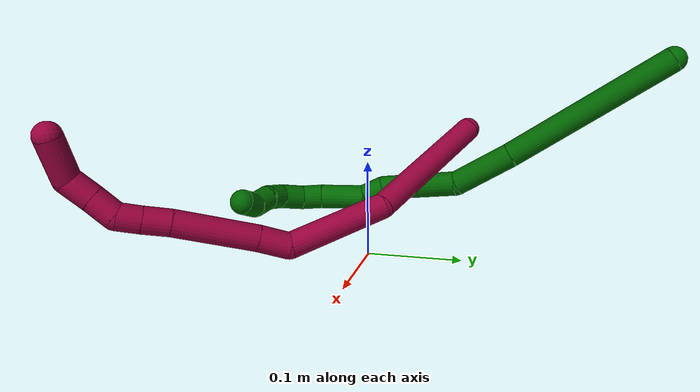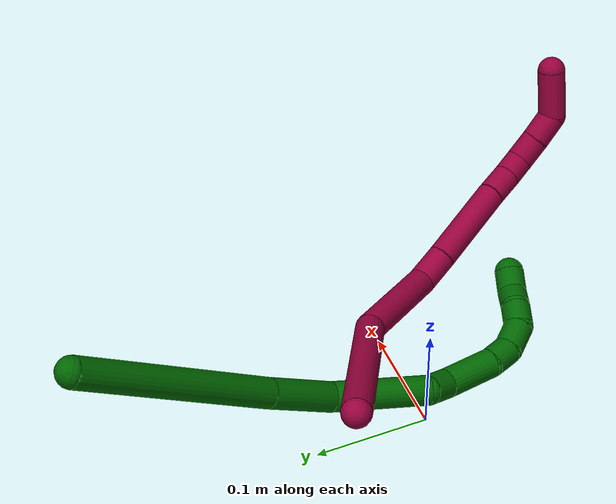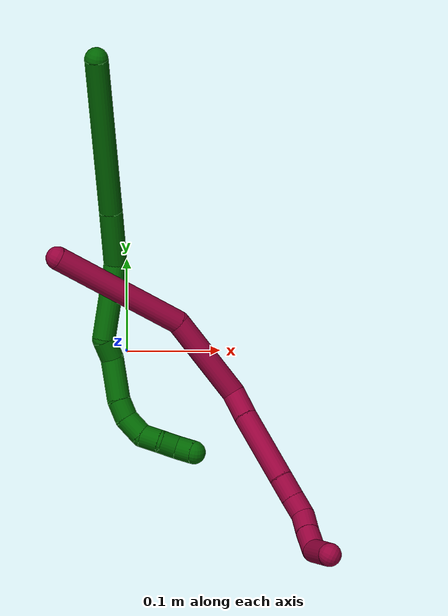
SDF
<sdf version="1.7">
 <world name="default">
  <model name="6">
   <static>0</static>
   <link name="6">
    <collision name="collision-cylinder-e_1_1_4">
     <pose>0.017087 -0.012373 -0.087234 3.0007 0.191557 1.8746</pose>
     <geometry><cylinder><radius>0.0125</radius><length>0.179497</length></cylinder></geometry>
     <surface>
      <friction><ode><mu>1.16</mu><mu2>1.16</mu2><slip1>0</slip1><slip2>0</slip2></ode></friction>
      <contact><ode><kp>1e+06</kp><kd>1</kd><max_vel>0</max_vel><min_depth>0.001</min_depth></ode></contact>
     </surface>
    </collision>
    <visual name="visual-cylinder-e_1_1_4">
     <pose>0.017087 -0.012373 -0.087234 3.0007 0.191557 1.8746</pose>
     <geometry><cylinder><radius>0.0125</radius><length>0.179497</length></cylinder></geometry>
     <material><ambient>0 0.392157 0.003922 1</ambient></material>
    </visual>
    <collision name="collision-cylinder-e_2_4_5">
     <pose>0.038943 -0.029964 -0.204991 2.97227 0.152793 1.46781</pose>
     <geometry><cylinder><radius>0.0125</radius><length>0.062663</length></cylinder></geometry>
     <surface>
      <friction><ode><mu>1.16</mu><mu2>1.16</mu2><slip1>0</slip1><slip2>0</slip2></ode></friction>
      <contact><ode><kp>1e+06</kp><kd>1</kd><max_vel>0</max_vel><min_depth>0.001</min_depth></ode></contact>
     </surface>
    </collision>
    <visual name="visual-cylinder-e_2_4_5">
     <pose>0.038943 -0.029964 -0.204991 2.97227 0.152793 1.46781</pose>
     <geometry><cylinder><radius>0.0125</radius><length>0.062663</length></cylinder></geometry>
     <material><ambient>0 0.392157 0.003922 1</ambient></material>
    </visual>
    <collision name="collision-cylinder-e_3_5_6">
     <pose>0.032377 -0.043817 -0.274007 2.9209 -0.279778 -1.80826</pose>
     <geometry><cylinder><radius>0.0125</radius><length>0.08209</length></cylinder></geometry>
     <surface>
      <friction><ode><mu>1.16</mu><mu2>1.16</mu2><slip1>0</slip1><slip2>0</slip2></ode></friction>
      <contact><ode><kp>1e+06</kp><kd>1</kd><max_vel>0</max_vel><min_depth>0.001</min_depth></ode></contact>
     </surface>
    </collision>
    <visual name="visual-cylinder-e_3_5_6">
     <pose>0.032377 -0.043817 -0.274007 2.9209 -0.279778 -1.80826</pose>
     <geometry><cylinder><radius>0.0125</radius><length>0.08209</length></cylinder></geometry>
     <material><ambient>0 0.392157 0.003922 1</ambient></material>
    </visual>
    <collision name="collision-cylinder-e_4_6_7">
     <pose>0.024065 -0.057731 -0.322696 2.66394 0.2574 0.977112</pose>
     <geometry><cylinder><radius>0.0125</radius><length>0.023747</length></cylinder></geometry>
     <surface>
      <friction><ode><mu>1.16</mu><mu2>1.16</mu2><slip1>0</slip1><slip2>0</slip2></ode></friction>
      <contact><ode><kp>1e+06</kp><kd>1</kd><max_vel>0</max_vel><min_depth>0.001</min_depth></ode></contact>
     </surface>
    </collision>
    <visual name="visual-cylinder-e_4_6_7">
     <pose>0.024065 -0.057731 -0.322696 2.66394 0.2574 0.977112</pose>
     <geometry><cylinder><radius>0.0125</radius><length>0.023747</length></cylinder></geometry>
     <material><ambient>0 0.392157 0.003922 1</ambient></material>
    </visual>
    <collision name="collision-cylinder-e_5_7_8">
     <pose>0.02251 -0.075067 -0.351524 2.56723 -0.203415 -0.665424</pose>
     <geometry><cylinder><radius>0.0125</radius><length>0.045319</length></cylinder></geometry>
     <surface>
      <friction><ode><mu>1.16</mu><mu2>1.16</mu2><slip1>0</slip1><slip2>0</slip2></ode></friction>
      <contact><ode><kp>1e+06</kp><kd>1</kd><max_vel>0</max_vel><min_depth>0.001</min_depth></ode></contact>
     </surface>
    </collision>
    <visual name="visual-cylinder-e_5_7_8">
     <pose>0.02251 -0.075067 -0.351524 2.56723 -0.203415 -0.665424</pose>
     <geometry><cylinder><radius>0.0125</radius><length>0.045319</length></cylinder></geometry>
     <material><ambient>0 0.392157 0.003922 1</ambient></material>
    </visual>
    <collision name="collision-cylinder-e_6_8_9">
     <pose>0.017547 -0.094371 -0.378005 2.39606 -0.03607 -0.092183</pose>
     <geometry><cylinder><radius>0.0125</radius><length>0.021381</length></cylinder></geometry>
     <surface>
      <friction><ode><mu>1.16</mu><mu2>1.16</mu2><slip1>0</slip1><slip2>0</slip2></ode></friction>
      <contact><ode><kp>1e+06</kp><kd>1</kd><max_vel>0</max_vel><min_depth>0.001</min_depth></ode></contact>
     </surface>
    </collision>
    <visual name="visual-cylinder-e_6_8_9">
     <pose>0.017547 -0.094371 -0.378005 2.39606 -0.03607 -0.092183</pose>
     <geometry><cylinder><radius>0.0125</radius><length>0.021381</length></cylinder></geometry>
     <material><ambient>0 0.392157 0.003922 1</ambient></material>
    </visual>
    <collision name="collision-cylinder-e_7_9_10">
     <pose>0.017813 -0.11297 -0.391116 2.00484 0.052016 0.081417</pose>
     <geometry><cylinder><radius>0.0125</radius><length>0.025057</length></cylinder></geometry>
     <surface>
      <friction><ode><mu>1.16</mu><mu2>1.16</mu2><slip1>0</slip1><slip2>0</slip2></ode></friction>
      <contact><ode><kp>1e+06</kp><kd>1</kd><max_vel>0</max_vel><min_depth>0.001</min_depth></ode></contact>
     </surface>
    </collision>
    <visual name="visual-cylinder-e_7_9_10">
     <pose>0.017813 -0.11297 -0.391116 2.00484 0.052016 0.081417</pose>
     <geometry><cylinder><radius>0.0125</radius><length>0.025057</length></cylinder></geometry>
     <material><ambient>0 0.392157 0.003922 1</ambient></material>
    </visual>
    <collision name="collision-cylinder-e_8_10_11">
     <pose>0.02201 -0.133688 -0.39672 1.60729 0.361681 0.374821</pose>
     <geometry><cylinder><radius>0.0125</radius><length>0.020042</length></cylinder></geometry>
     <surface>
      <friction><ode><mu>1.16</mu><mu2>1.16</mu2><slip1>0</slip1><slip2>0</slip2></ode></friction>
      <contact><ode><kp>1e+06</kp><kd>1</kd><max_vel>0</max_vel><min_depth>0.001</min_depth></ode></contact>
     </surface>
    </collision>
    <visual name="visual-cylinder-e_8_10_11">
     <pose>0.02201 -0.133688 -0.39672 1.60729 0.361681 0.374821</pose>
     <geometry><cylinder><radius>0.0125</radius><length>0.020042</length></cylinder></geometry>
     <material><ambient>0 0.392157 0.003922 1</ambient></material>
    </visual>
    <collision name="collision-cylinder-e_9_11_12">
     <pose>0.031482 -0.150852 -0.39915 1.83248 0.633256 0.807044</pose>
     <geometry><cylinder><radius>0.0125</radius><length>0.020028</length></cylinder></geometry>
     <surface>
      <friction><ode><mu>1.16</mu><mu2>1.16</mu2><slip1>0</slip1><slip2>0</slip2></ode></friction>
      <contact><ode><kp>1e+06</kp><kd>1</kd><max_vel>0</max_vel><min_depth>0.001</min_depth></ode></contact>
     </surface>
    </collision>
    <visual name="visual-cylinder-e_9_11_12">
     <pose>0.031482 -0.150852 -0.39915 1.83248 0.633256 0.807044</pose>
     <geometry><cylinder><radius>0.0125</radius><length>0.020028</length></cylinder></geometry>
     <material><ambient>0 0.392157 0.003922 1</ambient></material>
    </visual>
    <collision name="collision-cylinder-e_10_12_2">
     <pose>0.039223 -0.168518 -0.400194 1.46531 0.180849 0.162796</pose>
     <geometry><cylinder><radius>0.0125</radius><length>0.020176</length></cylinder></geometry>
     <surface>
      <friction><ode><mu>1.16</mu><mu2>1.16</mu2><slip1>0</slip1><slip2>0</slip2></ode></friction>
      <contact><ode><kp>1e+06</kp><kd>1</kd><max_vel>0</max_vel><min_depth>0.001</min_depth></ode></contact>
     </surface>
    </collision>
    <visual name="visual-cylinder-e_10_12_2">
     <pose>0.039223 -0.168518 -0.400194 1.46531 0.180849 0.162796</pose>
     <geometry><cylinder><radius>0.0125</radius><length>0.020176</length></cylinder></geometry>
     <material><ambient>0 0.392157 0.003922 1</ambient></material>
    </visual>
    <collision name="collision-sphere-2">
     <pose>0.041037 -0.178387 -0.399149 0 -0 0</pose>
     <geometry><sphere><radius>0.0125</radius></sphere></geometry>
     <surface>
      <friction><ode><mu>1.16</mu><mu2>1.16</mu2><slip1>0</slip1><slip2>0</slip2></ode></friction>
      <contact><ode><kp>1e+06</kp><kd>1</kd><max_vel>0</max_vel><min_depth>0.001</min_depth></ode></contact>
     </surface>
    </collision>
    <visual name="visual-sphere-2">
     <pose>0.041037 -0.178387 -0.399149 0 -0 0</pose>
     <geometry><sphere><radius>0.0125</radius></sphere></geometry>
     <material><ambient>0 0.392157 0.003922 1</ambient></material>
    </visual>
    <collision name="collision-sphere-12">
     <pose>0.037409 -0.15865 -0.401239 0 -0 0</pose>
     <geometry><sphere><radius>0.0125</radius></sphere></geometry>
     <surface>
      <friction><ode><mu>1.16</mu><mu2>1.16</mu2><slip1>0</slip1><slip2>0</slip2></ode></friction>
      <contact><ode><kp>1e+06</kp><kd>1</kd><max_vel>0</max_vel><min_depth>0.001</min_depth></ode></contact>
     </surface>
    </collision>
    <visual name="visual-sphere-12">
     <pose>0.037409 -0.15865 -0.401239 0 -0 0</pose>
     <geometry><sphere><radius>0.0125</radius></sphere></geometry>
     <material><ambient>0 0.392157 0.003922 1</ambient></material>
    </visual>
    <collision name="collision-sphere-11">
     <pose>0.025556 -0.143054 -0.397062 0 -0 0</pose>
     <geometry><sphere><radius>0.0125</radius></sphere></geometry>
     <surface>
      <friction><ode><mu>1.16</mu><mu2>1.16</mu2><slip1>0</slip1><slip2>0</slip2></ode></friction>
      <contact><ode><kp>1e+06</kp><kd>1</kd><max_vel>0</max_vel><min_depth>0.001</min_depth></ode></contact>
     </surface>
    </collision>
    <visual name="visual-sphere-11">
     <pose>0.025556 -0.143054 -0.397062 0 -0 0</pose>
     <geometry><sphere><radius>0.0125</radius></sphere></geometry>
     <material><ambient>0 0.392157 0.003922 1</ambient></material>
    </visual>
    <collision name="collision-sphere-10">
     <pose>0.018464 -0.124322 -0.396378 0 -0 0</pose>
     <geometry><sphere><radius>0.0125</radius></sphere></geometry>
     <surface>
      <friction><ode><mu>1.16</mu><mu2>1.16</mu2><slip1>0</slip1><slip2>0</slip2></ode></friction>
      <contact><ode><kp>1e+06</kp><kd>1</kd><max_vel>0</max_vel><min_depth>0.001</min_depth></ode></contact>
     </surface>
    </collision>
    <visual name="visual-sphere-10">
     <pose>0.018464 -0.124322 -0.396378 0 -0 0</pose>
     <geometry><sphere><radius>0.0125</radius></sphere></geometry>
     <material><ambient>0 0.392157 0.003922 1</ambient></material>
    </visual>
    <collision name="collision-sphere-9">
     <pose>0.017162 -0.101618 -0.385854 0 -0 0</pose>
     <geometry><sphere><radius>0.0125</radius></sphere></geometry>
     <surface>
      <friction><ode><mu>1.16</mu><mu2>1.16</mu2><slip1>0</slip1><slip2>0</slip2></ode></friction>
      <contact><ode><kp>1e+06</kp><kd>1</kd><max_vel>0</max_vel><min_depth>0.001</min_depth></ode></contact>
     </surface>
    </collision>
    <visual name="visual-sphere-9">
     <pose>0.017162 -0.101618 -0.385854 0 -0 0</pose>
     <geometry><sphere><radius>0.0125</radius></sphere></geometry>
     <material><ambient>0 0.392157 0.003922 1</ambient></material>
    </visual>
    <collision name="collision-sphere-4">
     <pose>0.034174 -0.024745 -0.174468 0 -0 0</pose>
     <geometry><sphere><radius>0.0125</radius></sphere></geometry>
     <surface>
      <friction><ode><mu>1.16</mu><mu2>1.16</mu2><slip1>0</slip1><slip2>0</slip2></ode></friction>
      <contact><ode><kp>1e+06</kp><kd>1</kd><max_vel>0</max_vel><min_depth>0.001</min_depth></ode></contact>
     </surface>
    </collision>
    <visual name="visual-sphere-4">
     <pose>0.034174 -0.024745 -0.174468 0 -0 0</pose>
     <geometry><sphere><radius>0.0125</radius></sphere></geometry>
     <material><ambient>0 0.392157 0.003922 1</ambient></material>
    </visual>
    <collision name="collision-sphere-1">
     <geometry><sphere><radius>0.0125</radius></sphere></geometry>
     <surface>
      <friction><ode><mu>1.16</mu><mu2>1.16</mu2><slip1>0</slip1><slip2>0</slip2></ode></friction>
      <contact><ode><kp>1e+06</kp><kd>1</kd><max_vel>0</max_vel><min_depth>0.001</min_depth></ode></contact>
     </surface>
    </collision>
    <visual name="visual-sphere-1">
     <geometry><sphere><radius>0.0125</radius></sphere></geometry>
     <material><ambient>0 0.392157 0.003922 1</ambient></material>
    </visual>
    <collision name="collision-sphere-8">
     <pose>0.017933 -0.087124 -0.370156 0 -0 0</pose>
     <geometry><sphere><radius>0.0125</radius></sphere></geometry>
     <surface>
      <friction><ode><mu>1.16</mu><mu2>1.16</mu2><slip1>0</slip1><slip2>0</slip2></ode></friction>
      <contact><ode><kp>1e+06</kp><kd>1</kd><max_vel>0</max_vel><min_depth>0.001</min_depth></ode></contact>
     </surface>
    </collision>
    <visual name="visual-sphere-8">
     <pose>0.017933 -0.087124 -0.370156 0 -0 0</pose>
     <geometry><sphere><radius>0.0125</radius></sphere></geometry>
     <material><ambient>0 0.392157 0.003922 1</ambient></material>
    </visual>
    <collision name="collision-sphere-5">
     <pose>0.043711 -0.035182 -0.235515 0 -0 0</pose>
     <geometry><sphere><radius>0.0125</radius></sphere></geometry>
     <surface>
      <friction><ode><mu>1.16</mu><mu2>1.16</mu2><slip1>0</slip1><slip2>0</slip2></ode></friction>
      <contact><ode><kp>1e+06</kp><kd>1</kd><max_vel>0</max_vel><min_depth>0.001</min_depth></ode></contact>
     </surface>
    </collision>
    <visual name="visual-sphere-5">
     <pose>0.043711 -0.035182 -0.235515 0 -0 0</pose>
     <geometry><sphere><radius>0.0125</radius></sphere></geometry>
     <material><ambient>0 0.392157 0.003922 1</ambient></material>
    </visual>
    <collision name="collision-sphere-6">
     <pose>0.021043 -0.052453 -0.312499 0 -0 0</pose>
     <geometry><sphere><radius>0.0125</radius></sphere></geometry>
     <surface>
      <friction><ode><mu>1.16</mu><mu2>1.16</mu2><slip1>0</slip1><slip2>0</slip2></ode></friction>
      <contact><ode><kp>1e+06</kp><kd>1</kd><max_vel>0</max_vel><min_depth>0.001</min_depth></ode></contact>
     </surface>
    </collision>
    <visual name="visual-sphere-6">
     <pose>0.021043 -0.052453 -0.312499 0 -0 0</pose>
     <geometry><sphere><radius>0.0125</radius></sphere></geometry>
     <material><ambient>0 0.392157 0.003922 1</ambient></material>
    </visual>
    <collision name="collision-sphere-7">
     <pose>0.027088 -0.06301 -0.332893 0 -0 0</pose>
     <geometry><sphere><radius>0.0125</radius></sphere></geometry>
     <surface>
      <friction><ode><mu>1.16</mu><mu2>1.16</mu2><slip1>0</slip1><slip2>0</slip2></ode></friction>
      <contact><ode><kp>1e+06</kp><kd>1</kd><max_vel>0</max_vel><min_depth>0.001</min_depth></ode></contact>
     </surface>
    </collision>
    <visual name="visual-sphere-7">
     <pose>0.027088 -0.06301 -0.332893 0 -0 0</pose>
     <geometry><sphere><radius>0.0125</radius></sphere></geometry>
     <material><ambient>0 0.392157 0.003922 1</ambient></material>
    </visual>
    <inertial>
     <pose>0.024883 -0.052835 -0.232985 0 -0 0</pose>
     <mass>0.5</mass>
     <inertia><ixx>0.000299</ixx><ixy>0</ixy><ixz>0</ixz><iyy>0.00058</iyy><iyz>0</iyz><izz>-2e-05</izz></inertia>
    </inertial>
   </link>
   <pose>-0.025495 0.294888 0.210399 -0.774087 0.815637 0.448445</pose>
  </model>
  <model name="8">
   <static>0</static>
   <link name="8">
    <collision name="collision-cylinder-e_1_1_4">
     <pose>0.028087 -0.000513 0.070913 0.007236 0.377108 0.001381</pose>
     <geometry><cylinder><radius>0.0125</radius><length>0.15255</length></cylinder></geometry>
     <surface>
      <friction><ode><mu>1.16</mu><mu2>1.16</mu2><slip1>0</slip1><slip2>0</slip2></ode></friction>
      <contact><ode><kp>1e+06</kp><kd>1</kd><max_vel>0</max_vel><min_depth>0.001</min_depth></ode></contact>
     </surface>
    </collision>
    <visual name="visual-cylinder-e_1_1_4">
     <pose>0.028087 -0.000513 0.070913 0.007236 0.377108 0.001381</pose>
     <geometry><cylinder><radius>0.0125</radius><length>0.15255</length></cylinder></geometry>
     <material><ambient>0.584314 0 0.227451 1</ambient></material>
    </visual>
    <collision name="collision-cylinder-e_2_4_5">
     <pose>0.069464 -0.020835 0.185002 0.430136 0.272798 0.059946</pose>
     <geometry><cylinder><radius>0.0125</radius><length>0.098654</length></cylinder></geometry>
     <surface>
      <friction><ode><mu>1.16</mu><mu2>1.16</mu2><slip1>0</slip1><slip2>0</slip2></ode></friction>
      <contact><ode><kp>1e+06</kp><kd>1</kd><max_vel>0</max_vel><min_depth>0.001</min_depth></ode></contact>
     </surface>
    </collision>
    <visual name="visual-cylinder-e_2_4_5">
     <pose>0.069464 -0.020835 0.185002 0.430136 0.272798 0.059946</pose>
     <geometry><cylinder><radius>0.0125</radius><length>0.098654</length></cylinder></geometry>
     <material><ambient>0.584314 0 0.227451 1</ambient></material>
    </visual>
    <collision name="collision-cylinder-e_3_5_6">
     <pose>0.077801 -0.04903 0.239834 0.623735 -0.332144 -0.10797</pose>
     <geometry><cylinder><radius>0.0125</radius><length>0.03038</length></cylinder></geometry>
     <surface>
      <friction><ode><mu>1.16</mu><mu2>1.16</mu2><slip1>0</slip1><slip2>0</slip2></ode></friction>
      <contact><ode><kp>1e+06</kp><kd>1</kd><max_vel>0</max_vel><min_depth>0.001</min_depth></ode></contact>
     </surface>
    </collision>
    <visual name="visual-cylinder-e_3_5_6">
     <pose>0.077801 -0.04903 0.239834 0.623735 -0.332144 -0.10797</pose>
     <geometry><cylinder><radius>0.0125</radius><length>0.03038</length></cylinder></geometry>
     <material><ambient>0.584314 0 0.227451 1</ambient></material>
    </visual>
    <collision name="collision-cylinder-e_4_6_7">
     <pose>0.062006 -0.077687 0.283096 0.570245 -0.281099 -0.082892</pose>
     <geometry><cylinder><radius>0.0125</radius><length>0.078163</length></cylinder></geometry>
     <surface>
      <friction><ode><mu>1.16</mu><mu2>1.16</mu2><slip1>0</slip1><slip2>0</slip2></ode></friction>
      <contact><ode><kp>1e+06</kp><kd>1</kd><max_vel>0</max_vel><min_depth>0.001</min_depth></ode></contact>
     </surface>
    </collision>
    <visual name="visual-cylinder-e_4_6_7">
     <pose>0.062006 -0.077687 0.283096 0.570245 -0.281099 -0.082892</pose>
     <geometry><cylinder><radius>0.0125</radius><length>0.078163</length></cylinder></geometry>
     <material><ambient>0.584314 0 0.227451 1</ambient></material>
    </visual>
    <collision name="collision-cylinder-e_5_7_8">
     <pose>0.048689 -0.104593 0.325044 0.57055 -0.198759 -0.058467</pose>
     <geometry><cylinder><radius>0.0125</radius><length>0.025069</length></cylinder></geometry>
     <surface>
      <friction><ode><mu>1.16</mu><mu2>1.16</mu2><slip1>0</slip1><slip2>0</slip2></ode></friction>
      <contact><ode><kp>1e+06</kp><kd>1</kd><max_vel>0</max_vel><min_depth>0.001</min_depth></ode></contact>
     </surface>
    </collision>
    <visual name="visual-cylinder-e_5_7_8">
     <pose>0.048689 -0.104593 0.325044 0.57055 -0.198759 -0.058467</pose>
     <geometry><cylinder><radius>0.0125</radius><length>0.025069</length></cylinder></geometry>
     <material><ambient>0.584314 0 0.227451 1</ambient></material>
    </visual>
    <collision name="collision-cylinder-e_6_8_9">
     <pose>0.043616 -0.116754 0.344293 0.555186 -0.243045 -0.069571</pose>
     <geometry><cylinder><radius>0.0125</radius><length>0.021599</length></cylinder></geometry>
     <surface>
      <friction><ode><mu>1.16</mu><mu2>1.16</mu2><slip1>0</slip1><slip2>0</slip2></ode></friction>
      <contact><ode><kp>1e+06</kp><kd>1</kd><max_vel>0</max_vel><min_depth>0.001</min_depth></ode></contact>
     </surface>
    </collision>
    <visual name="visual-cylinder-e_6_8_9">
     <pose>0.043616 -0.116754 0.344293 0.555186 -0.243045 -0.069571</pose>
     <geometry><cylinder><radius>0.0125</radius><length>0.021599</length></cylinder></geometry>
     <material><ambient>0.584314 0 0.227451 1</ambient></material>
    </visual>
    <collision name="collision-cylinder-e_7_9_10">
     <pose>0.032881 -0.129016 0.359296 0.835282 -0.730307 -0.336086</pose>
     <geometry><cylinder><radius>0.0125</radius><length>0.024391</length></cylinder></geometry>
     <surface>
      <friction><ode><mu>1.16</mu><mu2>1.16</mu2><slip1>0</slip1><slip2>0</slip2></ode></friction>
      <contact><ode><kp>1e+06</kp><kd>1</kd><max_vel>0</max_vel><min_depth>0.001</min_depth></ode></contact>
     </surface>
    </collision>
    <visual name="visual-cylinder-e_7_9_10">
     <pose>0.032881 -0.129016 0.359296 0.835282 -0.730307 -0.336086</pose>
     <geometry><cylinder><radius>0.0125</radius><length>0.024391</length></cylinder></geometry>
     <material><ambient>0.584314 0 0.227451 1</ambient></material>
    </visual>
    <collision name="collision-cylinder-e_8_10_11">
     <pose>0.016256 -0.142496 0.372476 0.76077 -0.714912 -0.296504</pose>
     <geometry><cylinder><radius>0.0125</radius><length>0.0259</length></cylinder></geometry>
     <surface>
      <friction><ode><mu>1.16</mu><mu2>1.16</mu2><slip1>0</slip1><slip2>0</slip2></ode></friction>
      <contact><ode><kp>1e+06</kp><kd>1</kd><max_vel>0</max_vel><min_depth>0.001</min_depth></ode></contact>
     </surface>
    </collision>
    <visual name="visual-cylinder-e_8_10_11">
     <pose>0.016256 -0.142496 0.372476 0.76077 -0.714912 -0.296504</pose>
     <geometry><cylinder><radius>0.0125</radius><length>0.0259</length></cylinder></geometry>
     <material><ambient>0.584314 0 0.227451 1</ambient></material>
    </visual>
    <collision name="collision-cylinder-e_9_11_2">
     <pose>-0.012428 -0.146958 0.387015 -0.296669 -1.20231 0.204258</pose>
     <geometry><cylinder><radius>0.0125</radius><length>0.043295</length></cylinder></geometry>
     <surface>
      <friction><ode><mu>1.16</mu><mu2>1.16</mu2><slip1>0</slip1><slip2>0</slip2></ode></friction>
      <contact><ode><kp>1e+06</kp><kd>1</kd><max_vel>0</max_vel><min_depth>0.001</min_depth></ode></contact>
     </surface>
    </collision>
    <visual name="visual-cylinder-e_9_11_2">
     <pose>-0.012428 -0.146958 0.387015 -0.296669 -1.20231 0.204258</pose>
     <geometry><cylinder><radius>0.0125</radius><length>0.043295</length></cylinder></geometry>
     <material><ambient>0.584314 0 0.227451 1</ambient></material>
    </visual>
    <collision name="collision-sphere-2">
     <pose>-0.032623 -0.144679 0.394472 0 -0 0</pose>
     <geometry><sphere><radius>0.0125</radius></sphere></geometry>
     <surface>
      <friction><ode><mu>1.16</mu><mu2>1.16</mu2><slip1>0</slip1><slip2>0</slip2></ode></friction>
      <contact><ode><kp>1e+06</kp><kd>1</kd><max_vel>0</max_vel><min_depth>0.001</min_depth></ode></contact>
     </surface>
    </collision>
    <visual name="visual-sphere-2">
     <pose>-0.032623 -0.144679 0.394472 0 -0 0</pose>
     <geometry><sphere><radius>0.0125</radius></sphere></geometry>
     <material><ambient>0.584314 0 0.227451 1</ambient></material>
    </visual>
    <collision name="collision-sphere-11">
     <pose>0.007767 -0.149238 0.379559 0 -0 0</pose>
     <geometry><sphere><radius>0.0125</radius></sphere></geometry>
     <surface>
      <friction><ode><mu>1.16</mu><mu2>1.16</mu2><slip1>0</slip1><slip2>0</slip2></ode></friction>
      <contact><ode><kp>1e+06</kp><kd>1</kd><max_vel>0</max_vel><min_depth>0.001</min_depth></ode></contact>
     </surface>
    </collision>
    <visual name="visual-sphere-11">
     <pose>0.007767 -0.149238 0.379559 0 -0 0</pose>
     <geometry><sphere><radius>0.0125</radius></sphere></geometry>
     <material><ambient>0.584314 0 0.227451 1</ambient></material>
    </visual>
    <collision name="collision-sphere-10">
     <pose>0.024745 -0.135753 0.365393 0 -0 0</pose>
     <geometry><sphere><radius>0.0125</radius></sphere></geometry>
     <surface>
      <friction><ode><mu>1.16</mu><mu2>1.16</mu2><slip1>0</slip1><slip2>0</slip2></ode></friction>
      <contact><ode><kp>1e+06</kp><kd>1</kd><max_vel>0</max_vel><min_depth>0.001</min_depth></ode></contact>
     </surface>
    </collision>
    <visual name="visual-sphere-10">
     <pose>0.024745 -0.135753 0.365393 0 -0 0</pose>
     <geometry><sphere><radius>0.0125</radius></sphere></geometry>
     <material><ambient>0.584314 0 0.227451 1</ambient></material>
    </visual>
    <collision name="collision-sphere-9">
     <pose>0.041017 -0.12228 0.3532 0 -0 0</pose>
     <geometry><sphere><radius>0.0125</radius></sphere></geometry>
     <surface>
      <friction><ode><mu>1.16</mu><mu2>1.16</mu2><slip1>0</slip1><slip2>0</slip2></ode></friction>
      <contact><ode><kp>1e+06</kp><kd>1</kd><max_vel>0</max_vel><min_depth>0.001</min_depth></ode></contact>
     </surface>
    </collision>
    <visual name="visual-sphere-9">
     <pose>0.041017 -0.12228 0.3532 0 -0 0</pose>
     <geometry><sphere><radius>0.0125</radius></sphere></geometry>
     <material><ambient>0.584314 0 0.227451 1</ambient></material>
    </visual>
    <collision name="collision-sphere-4">
     <pose>0.056174 -0.001026 0.141827 0 -0 0</pose>
     <geometry><sphere><radius>0.0125</radius></sphere></geometry>
     <surface>
      <friction><ode><mu>1.16</mu><mu2>1.16</mu2><slip1>0</slip1><slip2>0</slip2></ode></friction>
      <contact><ode><kp>1e+06</kp><kd>1</kd><max_vel>0</max_vel><min_depth>0.001</min_depth></ode></contact>
     </surface>
    </collision>
    <visual name="visual-sphere-4">
     <pose>0.056174 -0.001026 0.141827 0 -0 0</pose>
     <geometry><sphere><radius>0.0125</radius></sphere></geometry>
     <material><ambient>0.584314 0 0.227451 1</ambient></material>
    </visual>
    <collision name="collision-sphere-1">
     <geometry><sphere><radius>0.0125</radius></sphere></geometry>
     <surface>
      <friction><ode><mu>1.16</mu><mu2>1.16</mu2><slip1>0</slip1><slip2>0</slip2></ode></friction>
      <contact><ode><kp>1e+06</kp><kd>1</kd><max_vel>0</max_vel><min_depth>0.001</min_depth></ode></contact>
     </surface>
    </collision>
    <visual name="visual-sphere-1">
     <geometry><sphere><radius>0.0125</radius></sphere></geometry>
     <material><ambient>0.584314 0 0.227451 1</ambient></material>
    </visual>
    <collision name="collision-sphere-8">
     <pose>0.046215 -0.111229 0.335385 0 -0 0</pose>
     <geometry><sphere><radius>0.0125</radius></sphere></geometry>
     <surface>
      <friction><ode><mu>1.16</mu><mu2>1.16</mu2><slip1>0</slip1><slip2>0</slip2></ode></friction>
      <contact><ode><kp>1e+06</kp><kd>1</kd><max_vel>0</max_vel><min_depth>0.001</min_depth></ode></contact>
     </surface>
    </collision>
    <visual name="visual-sphere-8">
     <pose>0.046215 -0.111229 0.335385 0 -0 0</pose>
     <geometry><sphere><radius>0.0125</radius></sphere></geometry>
     <material><ambient>0.584314 0 0.227451 1</ambient></material>
    </visual>
    <collision name="collision-sphere-5">
     <pose>0.082754 -0.040643 0.228178 0 -0 0</pose>
     <geometry><sphere><radius>0.0125</radius></sphere></geometry>
     <surface>
      <friction><ode><mu>1.16</mu><mu2>1.16</mu2><slip1>0</slip1><slip2>0</slip2></ode></friction>
      <contact><ode><kp>1e+06</kp><kd>1</kd><max_vel>0</max_vel><min_depth>0.001</min_depth></ode></contact>
     </surface>
    </collision>
    <visual name="visual-sphere-5">
     <pose>0.082754 -0.040643 0.228178 0 -0 0</pose>
     <geometry><sphere><radius>0.0125</radius></sphere></geometry>
     <material><ambient>0.584314 0 0.227451 1</ambient></material>
    </visual>
    <collision name="collision-sphere-6">
     <pose>0.072848 -0.057417 0.25149 0 -0 0</pose>
     <geometry><sphere><radius>0.0125</radius></sphere></geometry>
     <surface>
      <friction><ode><mu>1.16</mu><mu2>1.16</mu2><slip1>0</slip1><slip2>0</slip2></ode></friction>
      <contact><ode><kp>1e+06</kp><kd>1</kd><max_vel>0</max_vel><min_depth>0.001</min_depth></ode></contact>
     </surface>
    </collision>
    <visual name="visual-sphere-6">
     <pose>0.072848 -0.057417 0.25149 0 -0 0</pose>
     <geometry><sphere><radius>0.0125</radius></sphere></geometry>
     <material><ambient>0.584314 0 0.227451 1</ambient></material>
    </visual>
    <collision name="collision-sphere-7">
     <pose>0.051164 -0.097956 0.314702 0 -0 0</pose>
     <geometry><sphere><radius>0.0125</radius></sphere></geometry>
     <surface>
      <friction><ode><mu>1.16</mu><mu2>1.16</mu2><slip1>0</slip1><slip2>0</slip2></ode></friction>
      <contact><ode><kp>1e+06</kp><kd>1</kd><max_vel>0</max_vel><min_depth>0.001</min_depth></ode></contact>
     </surface>
    </collision>
    <visual name="visual-sphere-7">
     <pose>0.051164 -0.097956 0.314702 0 -0 0</pose>
     <geometry><sphere><radius>0.0125</radius></sphere></geometry>
     <material><ambient>0.584314 0 0.227451 1</ambient></material>
    </visual>
    <inertial>
     <pose>0.04239 -0.056079 0.218468 0 -0 0</pose>
     <mass>0.5</mass>
     <inertia>
      <ixx>0.000414</ixx>
      <ixy>0</ixy>
      <ixz>0</ixz>
      <iyy>0.000423</iyy>
      <iyz>0</iyz>
      <izz>-1.5e-05</izz>
     </inertia>
    </inertial>
   </link>
   <pose>-0.070349 0.095202 0.125735 1.06391 1.55099 0.576933</pose>
  </model>
 </world>
</sdf>
